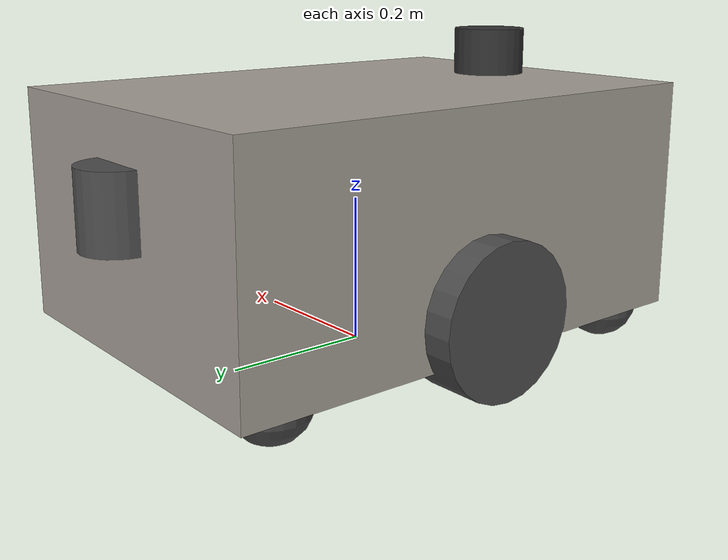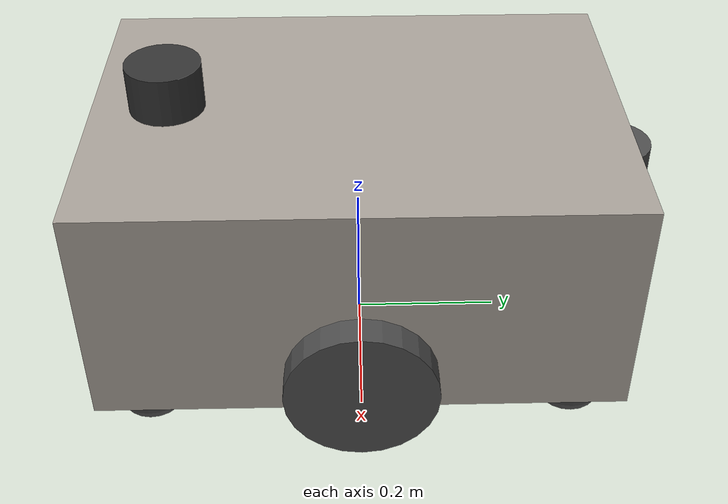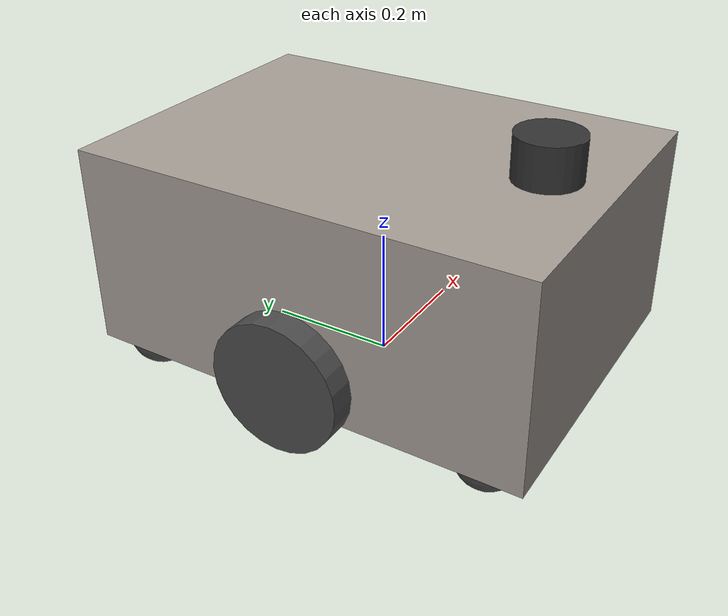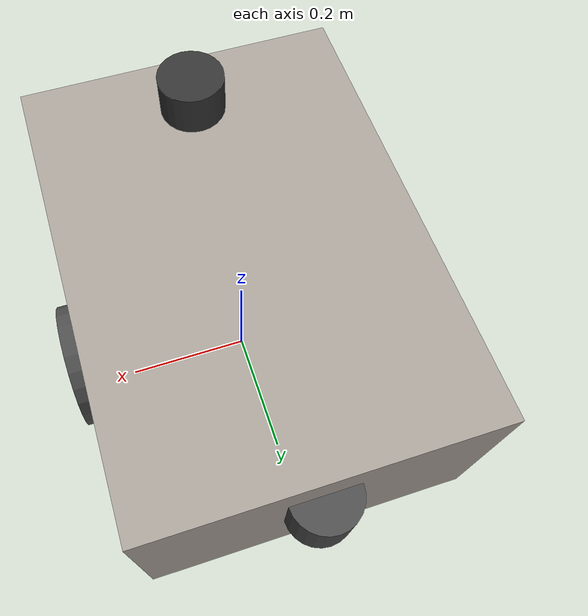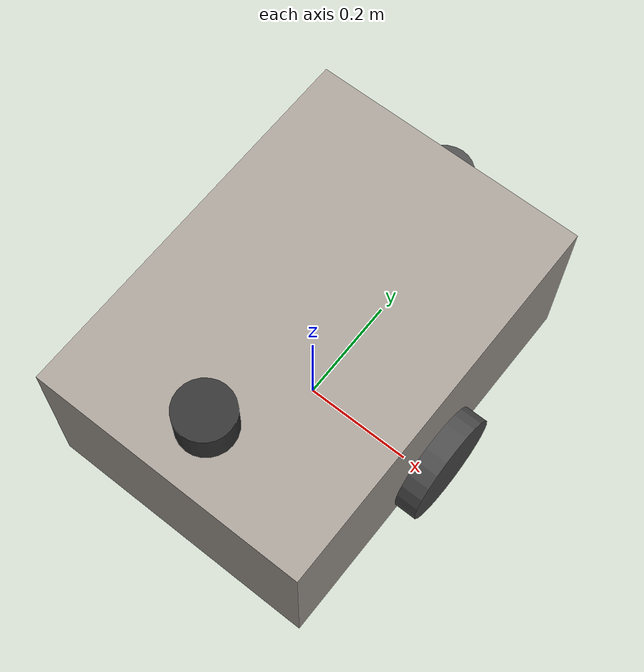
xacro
<?xml version="1.0" encoding="utf-8"?>
<robot name="glr_tugger" xmlns:xacro="http://ros.org/wiki/xacro">

  <!-- Wheel properties -->
  <xacro:property name="wheel_radius" value="0.1" />
  <xacro:property name="wheel_width" value="0.08" />
  <xacro:property name="wheel_mass" value="12" />

  <!-- Caster properties -->
  <xacro:property name="caster_radius" value="0.05" />
  <xacro:property name="caster_x" value="0.20" />
  <xacro:property name="caster_y" value="0.28" />
  <xacro:property name="caster_z" value="-0.05" />
  <xacro:property name="chassi_z" value="0.1" />
  <xacro:property name="lidar_offset_z" value="0.185" />
  <xacro:property name="hitch_offset_z" value="0.04" />

  <!-- Define intertial property macros  -->
  <xacro:macro name="box_inertia" params="m w d h">
    <inertia ixx="${1*(m/12) * (h*h + d*d)}" ixy="0.0" ixz="0.0" iyy="${1*(m/12) * (w*w + d*d)}" iyz="0.0" izz="${1*(m/12) * (w*w + h*h)}"/>
  </xacro:macro>

  <xacro:macro name="sphere_inertia" params="m r">
    <inertia ixx="${1*(2/5) * m * (r*r)}" ixy="0.0" ixz="0.0" iyy="${1*(2/5) * m * (r*r)}" iyz="0.0" izz="${1*(2/5) * m * (r*r)}"/>
  </xacro:macro>

  <xacro:macro name="cylinder_inertia" params="m r h">
    <inertial>
      <mass value="${m}"/>
      <inertia  ixx="${m*(3*r*r+h*h)/12}" ixy = "0" ixz = "0" iyy="${m*(3*r*r+h*h)/12}" iyz = "0" izz="${m*r*r/2}" />
    </inertial>
  </xacro:macro>

  <!--Robot description  -->
  <link name="base_link">
    <inertial>
      <origin xyz="0 0 0" rpy="0 0 0"/>
      <mass value="0.1"/>
      <inertia ixx="0.0001" ixy="0" ixz="0" iyy="0.0001" iyz="0" izz="0.0001"/>
    </inertial>
  </link>

  <!-- Robot Footprint -->
  <link name="base_footprint"/>

  <joint name="base_joint" type="fixed">
    <parent link="base_link"/>
    <child link="base_footprint"/>
    <origin xyz="0 0 0" rpy="0 0 0"/>
  </joint>

  <!-- Tugger -->
  <link name="chassibigga">
    <origin xyz="0 0 0" rpy="0 0 0" />
    <inertial>
      <origin xyz="0 0 ${chassi_z}" rpy="0 0 0" />
      <mass value="40" />
      <xacro:box_inertia m="40" w="0.5" d="0.7" h="0.31"/>
    </inertial>
    <visual>
      <origin xyz="0 0 ${chassi_z}" rpy="0 0 0" />
      <geometry>
          <box size="0.50 0.70 0.31"/>
      </geometry>
      <material name="">
        <color rgba="0.64706 0.61961 0.58824 1" />
      </material>
    </visual>
    <collision>
      <origin xyz="0 0 ${chassi_z}" rpy="0 0 0" />
      <geometry>
          <box size="0.50 0.70 0.31"/>
      </geometry>
    </collision>
  </link>

  <joint name="base_chassi_joint" type="fixed">
    <parent link="base_link"/>
    <child link="chassibigga"/>
    <origin xyz="0 0 ${wheel_radius}" rpy="0 0 0"/>
  </joint>

  <!-- Left Traction Wheel -->
  <link name="left_wheel">
    <inertial>
      <origin xyz="0 0 0" rpy="0 0 0"/>
      <mass value="${wheel_mass}"/>
      <inertia ixx="${0.5 * wheel_mass * wheel_radius * wheel_radius}"
               ixy="0" ixz="0"
               iyy="${(1.0/12.0) * wheel_mass * (3 * wheel_radius * wheel_radius + wheel_width * wheel_width)}"
               iyz="0"
               izz="${(1.0/12.0) * wheel_mass * (3 * wheel_radius * wheel_radius + wheel_width * wheel_width)}"/>
    </inertial>
    <visual>
      <origin xyz="0 0 0" rpy="0 1.5708 0"/>
      <geometry>
        <cylinder radius="${wheel_radius}" length="${wheel_width}"/>
      </geometry>
      <material name="wheel_material">
        <color rgba="0.29804 0.29804 0.29804 1"/>
      </material>
    </visual>
    <collision>
      <origin xyz="0 0 0" rpy="0 1.5708 0"/>
      <geometry>
        <cylinder radius="${wheel_radius}" length="${wheel_width}"/>
      </geometry>
    </collision>
  </link>

  <joint name="left_wheel_joint" type="continuous">
    <origin xyz="0.25 0 0" rpy="0 0 0"/>
    <parent link="chassibigga"/>
    <child link="left_wheel"/>
    <axis xyz="1 0 0"/>
    <dynamics damping="0.5" friction="1.0"/>
  </joint>

  <!-- Right Traction Wheel -->
  <link name="right_wheel">
    <inertial>
      <origin xyz="0 0 0" rpy="0 0 0"/>
      <mass value="${wheel_mass}"/>
      <inertia ixx="${0.5 * wheel_mass * wheel_radius * wheel_radius}"
               ixy="0" ixz="0"
               iyy="${(1.0/12.0) * wheel_mass * (3 * wheel_radius * wheel_radius + wheel_width * wheel_width)}"
               iyz="0"
               izz="${(1.0/12.0) * wheel_mass * (3 * wheel_radius * wheel_radius + wheel_width * wheel_width)}"/>
    </inertial>
    <visual>
      <origin xyz="0 0 0" rpy="0 1.5708 0"/>
      <geometry>
        <cylinder radius="${wheel_radius}" length="${wheel_width}"/>
      </geometry>
      <material name="wheel_material">
        <color rgba="0.29804 0.29804 0.29804 1"/>
      </material>
    </visual>
    <collision>
      <origin xyz="0 0 0" rpy="0 1.5708 0"/>
      <geometry>
        <cylinder radius="${wheel_radius}" length="${wheel_width}"/>
      </geometry>
    </collision>
  </link>

  <joint name="right_wheel_joint" type="continuous">
    <origin xyz="-0.25 0 0" rpy="0 0 0"/>
    <parent link="chassibigga"/>
    <child link="right_wheel"/>
    <axis xyz="1 0 0"/>
    <dynamics damping="0.5" friction="1.0"/>
  </joint>

  <!-- CASTER WHEELS -->
  <xacro:macro name="caster_wheel" params="prefix reflect offset">
    <link name="${prefix}_caster_wheel">
      <inertial>
        <origin xyz="0 0 0" rpy="0 0 0"/>
        <mass value="0.5"/>
        <xacro:sphere_inertia m="0.5" r="${caster_radius}"/>
      </inertial>
      <visual>
        <origin xyz="0 0 0" rpy="0 0 0"/>
        <geometry>
          <sphere radius="${caster_radius}"/>
        </geometry>
        <material name="caster_material">
          <color rgba="0.29804 0.29804 0.29804 1"/>
        </material>
      </visual>
      <collision>
        <origin xyz="0 0 0" rpy="0 0 0"/>
        <geometry>
          <sphere radius="${caster_radius}"/>
        </geometry>
      </collision>
    </link>

    <joint name="${prefix}_caster_wheel_joint" type="continuous">
      <origin xyz="${caster_x * offset} ${caster_y * reflect} ${caster_z}" rpy="0 0 0"/>
      <parent link="chassibigga"/>
      <child link="${prefix}_caster_wheel"/>
      <axis xyz="0 1 0"/>
      <dynamics damping="0.5" friction="0.5"/>
    </joint>
  </xacro:macro>

  <xacro:caster_wheel prefix="front_left" reflect="1" offset="1" />
  <xacro:caster_wheel prefix="front_right" reflect="-1" offset="1" />
  <xacro:caster_wheel prefix="rear_left" reflect="1" offset="-1" />
  <xacro:caster_wheel prefix="rear_right" reflect="-1" offset="-1" />

  <!-- Hitch point at the back of tugger -->
  <link name="hitch_link">
    <inertial>
      <origin xyz="0 0 0" rpy="0 0 0"/>
      <mass value="1.0"/>
      <inertia ixx="0.01" ixy="0" ixz="0" iyy="0.01" iyz="0" izz="0.01"/>
    </inertial>
    <visual>
      <origin xyz="0 0 0" rpy="0 0 0"/>
      <geometry>
        <cylinder radius="0.05" length="0.1"/>
      </geometry>
      <material name="hitch_material">
        <color rgba="0.3 0.3 0.3 1"/>
      </material>
    </visual>
    <collision>
      <origin xyz="0 0 0" rpy="0 0 0"/>
      <geometry>
        <cylinder radius="0.05" length="0.1"/>
      </geometry>
    </collision>
  </link>

  <joint name="hitch_joint" type="fixed">
    <origin xyz="0 0.35 ${chassi_z + hitch_offset_z}" rpy="0 0 0"/>
    <parent link="chassibigga"/>
    <child link="hitch_link"/>
  </joint>

  <!-- Generic LiDAR -->
  <link name="lidar_link">
    <inertial>
      <origin xyz="0 0 0" rpy="0 0 0"/>
      <mass value="0.5"/>
      <inertia ixx="0.001" ixy="0" ixz="0" iyy="0.001" iyz="0" izz="0.001"/>
    </inertial>
    <visual>
      <origin xyz="0 0 0" rpy="0 0 0"/>
      <geometry>
        <cylinder radius="0.05" length="0.07"/>
      </geometry>
      <material name="lidar_material">
        <color rgba="0.2 0.2 0.2 1"/>
      </material>
    </visual>
    <collision>
      <origin xyz="0 0 0" rpy="0 0 0"/>
      <geometry>
        <cylinder radius="0.05" length="0.07"/>
      </geometry>
    </collision>
  </link>

  <joint name="lidar_joint" type="fixed">
    <parent link="chassibigga"/>
    <child link="lidar_link"/>
    <origin xyz="0 -0.25 ${chassi_z + lidar_offset_z}" rpy="0 0 0"/>
  </joint>

</robot>
